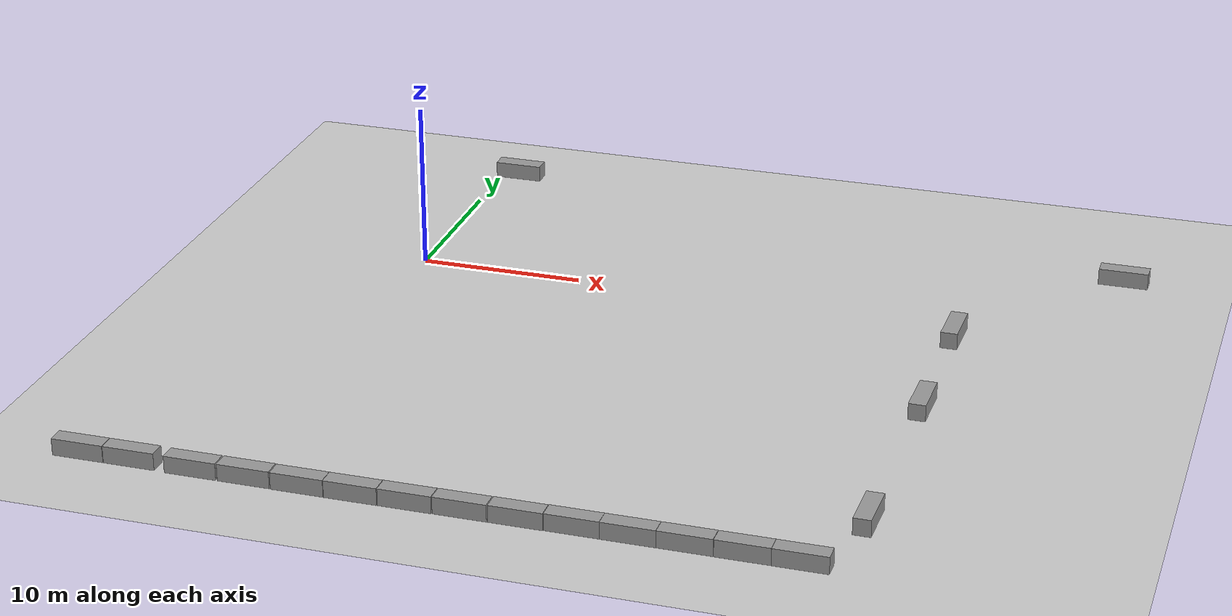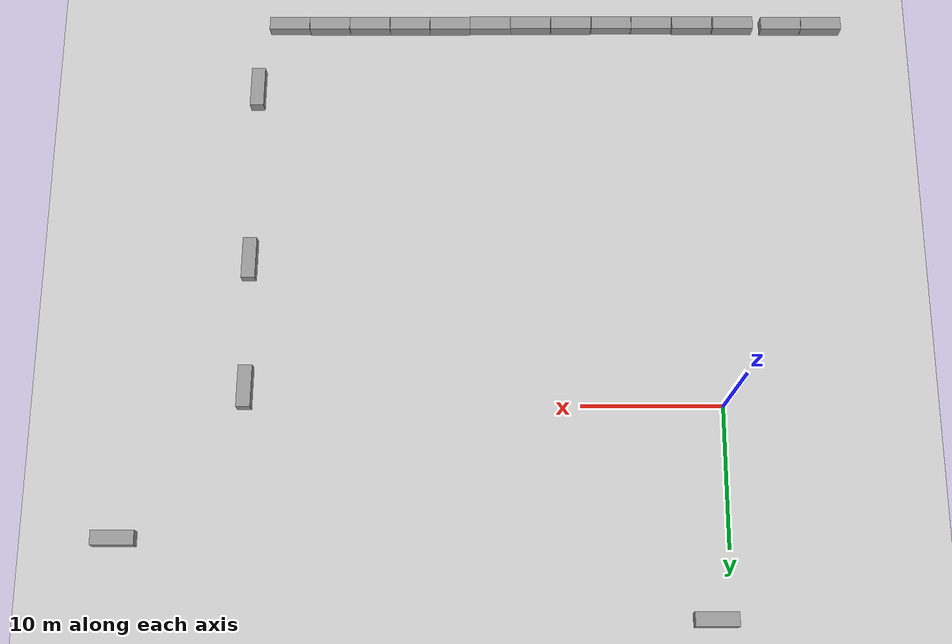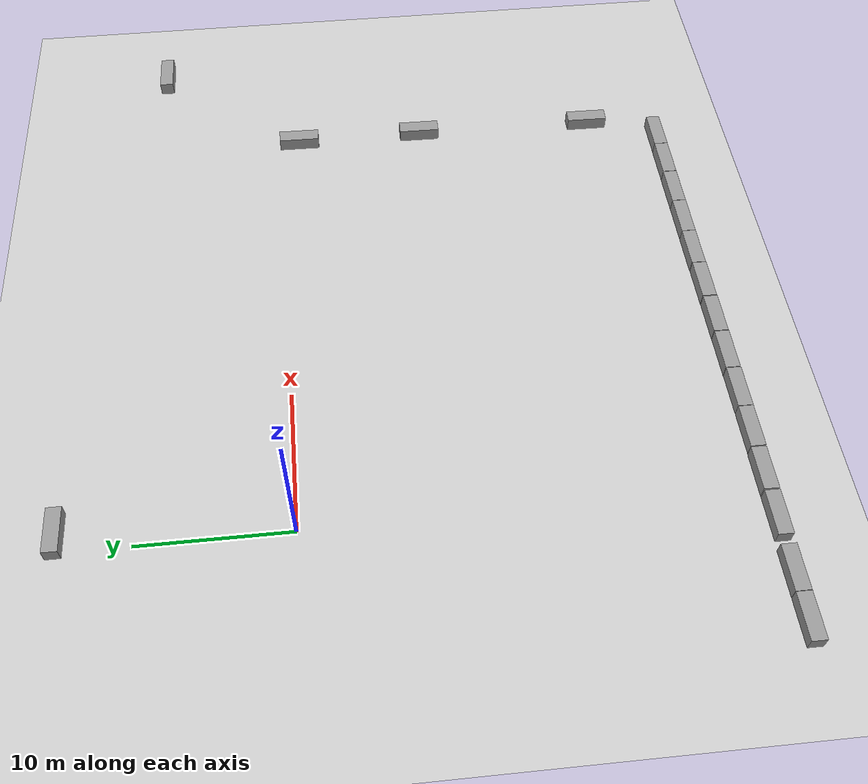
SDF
<sdf version="1.7">
 <world name="default">
  <light name="sun" type="directional">
   <pose>0 0 10 0 -0 0</pose>
   <diffuse>0.8 0.8 0.8 1</diffuse>
   <specular>0.2 0.2 0.2 1</specular>
   <attenuation>
    <range>1000</range>
    <constant>0.9</constant>
    <linear>0.01</linear>
    <quadratic>0.001</quadratic>
   </attenuation>
   <direction>-0.5 0.1 -0.9</direction>
   <spot><inner_angle>0</inner_angle><outer_angle>0</outer_angle><falloff>0</falloff></spot>
  </light>
  <model name="ground_plane">
   <static>1</static>
   <link name="link">
    <collision name="collision">
     <geometry><plane><normal>0 0 1</normal><size>100 100</size></plane></geometry>
     <surface><friction><ode><mu>100</mu><mu2>50</mu2></ode></friction></surface>
    </collision>
    <visual name="visual">
     <cast_shadows>0</cast_shadows>
     <geometry><plane><normal>0 0 1</normal><size>100 100</size></plane></geometry>
     <material>
      <script><uri>file://media/materials/scripts/gazebo.material</uri><name>Gazebo/Grey</name></script>
     </material>
    </visual>
   </link>
  </model>
  <gravity>0 0 -9.8</gravity>
  <magnetic_field>6e-06 2.3e-05 -4.2e-05</magnetic_field>
  <atmosphere type="adiabatic"/>
  <physics type="ode">
   <max_step_size>0.001</max_step_size>
   <real_time_factor>1</real_time_factor>
   <real_time_update_rate>1000</real_time_update_rate>
  </physics>
  <scene><ambient>0.4 0.4 0.4 1</ambient><background>0.7 0.7 0.7 1</background><shadows>1</shadows></scene>
  <audio><device>default</device></audio>
  <spherical_coordinates>
   <surface_model>EARTH_WGS84</surface_model>
   <latitude_deg>0</latitude_deg>
   <longitude_deg>0</longitude_deg>
   <elevation>0</elevation>
   <heading_deg>0</heading_deg>
  </spherical_coordinates>
  <model name="willow_garage_closed">
   <link name="link_0">
    <inertial>
     <mass>3</mass>
     <inertia><ixx>0.5</ixx><ixy>0</ixy><ixz>0</ixz><iyy>0.5</iyy><iyz>0</iyz><izz>0.5</izz></inertia>
    </inertial>
    <pose>-18.1731 -7.11068 0 0 -0 0</pose>
    <visual name="visual">
     <geometry><box><size>3 1 1</size></box></geometry>
     <material>
      <lighting>1</lighting>
      <script><uri>file://media/materials/scripts/gazebo.material</uri><name>Gazebo/Grey</name></script>
      <shader type="pixel"><normal_map>__default__</normal_map></shader>
      <ambient>0.3 0.3 0.3 1</ambient>
      <diffuse>0.7 0.7 0.7 1</diffuse>
      <specular>0.01 0.01 0.01 1</specular>
      <emissive>0 0 0 1</emissive>
     </material>
    </visual>
    <collision name="collision">
     <geometry><box><size>3 1 1</size></box></geometry>
     <surface>
      <friction>
       <ode><mu>1</mu><mu2>1</mu2><fdir1>0 0 0</fdir1><slip1>0</slip1><slip2>0</slip2></ode>
       <torsional>
        <coefficient>1</coefficient>
        <patch_radius>0</patch_radius>
        <surface_radius>0</surface_radius>
        <use_patch_radius>1</use_patch_radius>
        <ode><slip>0</slip></ode>
       </torsional>
      </friction>
      <bounce><restitution_coefficient>0</restitution_coefficient><threshold>1e+06</threshold></bounce>
      <contact>
       <collide_without_contact>0</collide_without_contact>
       <collide_without_contact_bitmask>1</collide_without_contact_bitmask>
       <collide_bitmask>1</collide_bitmask>
       <ode>
        <soft_cfm>0</soft_cfm>
        <soft_erp>0.2</soft_erp>
        <kp>1e+13</kp>
        <kd>1</kd>
        <max_vel>0.01</max_vel>
        <min_depth>0</min_depth>
       </ode>
       <bullet>
        <split_impulse>1</split_impulse>
        <split_impulse_penetration_threshold>-0.01</split_impulse_penetration_threshold>
        <soft_cfm>0</soft_cfm>
        <soft_erp>0.2</soft_erp>
        <kp>1e+13</kp>
        <kd>1</kd>
       </bullet>
      </contact>
     </surface>
    </collision>
   </link>
   <link name="link_0_clone_0">
    <inertial>
     <mass>3</mass>
     <inertia><ixx>0.5</ixx><ixy>0</ixy><ixz>0</ixz><iyy>0.5</iyy><iyz>0</iyz><izz>0.5</izz></inertia>
    </inertial>
    <pose>-12.0183 -7.13495 0 0 -0 0</pose>
    <visual name="visual">
     <geometry><box><size>3 1 1</size></box></geometry>
     <material>
      <lighting>1</lighting>
      <script><uri>file://media/materials/scripts/gazebo.material</uri><name>Gazebo/Grey</name></script>
      <shader type="pixel"><normal_map>__default__</normal_map></shader>
      <ambient>0.3 0.3 0.3 1</ambient>
      <diffuse>0.7 0.7 0.7 1</diffuse>
      <specular>0.01 0.01 0.01 1</specular>
      <emissive>0 0 0 1</emissive>
     </material>
    </visual>
    <collision name="collision">
     <geometry><box><size>3 1 1</size></box></geometry>
     <surface>
      <friction>
       <ode><mu>1</mu><mu2>1</mu2><fdir1>0 0 0</fdir1><slip1>0</slip1><slip2>0</slip2></ode>
       <torsional>
        <coefficient>1</coefficient>
        <patch_radius>0</patch_radius>
        <surface_radius>0</surface_radius>
        <use_patch_radius>1</use_patch_radius>
        <ode><slip>0</slip></ode>
       </torsional>
      </friction>
      <bounce><restitution_coefficient>0</restitution_coefficient><threshold>1e+06</threshold></bounce>
      <contact>
       <collide_without_contact>0</collide_without_contact>
       <collide_without_contact_bitmask>1</collide_without_contact_bitmask>
       <collide_bitmask>1</collide_bitmask>
       <ode>
        <soft_cfm>0</soft_cfm>
        <soft_erp>0.2</soft_erp>
        <kp>1e+13</kp>
        <kd>1</kd>
        <max_vel>0.01</max_vel>
        <min_depth>0</min_depth>
       </ode>
       <bullet>
        <split_impulse>1</split_impulse>
        <split_impulse_penetration_threshold>-0.01</split_impulse_penetration_threshold>
        <soft_cfm>0</soft_cfm>
        <soft_erp>0.2</soft_erp>
        <kp>1e+13</kp>
        <kd>1</kd>
       </bullet>
      </contact>
     </surface>
    </collision>
   </link>
   <link name="link_0_clone_1">
    <inertial>
     <mass>3</mass>
     <inertia><ixx>0.5</ixx><ixy>0</ixy><ixz>0</ixz><iyy>0.5</iyy><iyz>0</iyz><izz>0.5</izz></inertia>
    </inertial>
    <pose>-8.9893 -7.13725 0 0 -0 0</pose>
    <visual name="visual">
     <geometry><box><size>3 1 1</size></box></geometry>
     <material>
      <lighting>1</lighting>
      <script><uri>file://media/materials/scripts/gazebo.material</uri><name>Gazebo/Grey</name></script>
      <shader type="pixel"><normal_map>__default__</normal_map></shader>
      <ambient>0.3 0.3 0.3 1</ambient>
      <diffuse>0.7 0.7 0.7 1</diffuse>
      <specular>0.01 0.01 0.01 1</specular>
      <emissive>0 0 0 1</emissive>
     </material>
    </visual>
    <collision name="collision">
     <geometry><box><size>3 1 1</size></box></geometry>
     <surface>
      <friction>
       <ode><mu>1</mu><mu2>1</mu2><fdir1>0 0 0</fdir1><slip1>0</slip1><slip2>0</slip2></ode>
       <torsional>
        <coefficient>1</coefficient>
        <patch_radius>0</patch_radius>
        <surface_radius>0</surface_radius>
        <use_patch_radius>1</use_patch_radius>
        <ode><slip>0</slip></ode>
       </torsional>
      </friction>
      <bounce><restitution_coefficient>0</restitution_coefficient><threshold>1e+06</threshold></bounce>
      <contact>
       <collide_without_contact>0</collide_without_contact>
       <collide_without_contact_bitmask>1</collide_without_contact_bitmask>
       <collide_bitmask>1</collide_bitmask>
       <ode>
        <soft_cfm>0</soft_cfm>
        <soft_erp>0.2</soft_erp>
        <kp>1e+13</kp>
        <kd>1</kd>
        <max_vel>0.01</max_vel>
        <min_depth>0</min_depth>
       </ode>
       <bullet>
        <split_impulse>1</split_impulse>
        <split_impulse_penetration_threshold>-0.01</split_impulse_penetration_threshold>
        <soft_cfm>0</soft_cfm>
        <soft_erp>0.2</soft_erp>
        <kp>1e+13</kp>
        <kd>1</kd>
       </bullet>
      </contact>
     </surface>
    </collision>
   </link>
   <link name="link_0_clone_1_clone">
    <inertial>
     <mass>3</mass>
     <inertia><ixx>0.5</ixx><ixy>0</ixy><ixz>0</ixz><iyy>0.5</iyy><iyz>0</iyz><izz>0.5</izz></inertia>
    </inertial>
    <pose>-5.94987 -7.12324 0 0 -0 0</pose>
    <visual name="visual">
     <geometry><box><size>3 1 1</size></box></geometry>
     <material>
      <lighting>1</lighting>
      <script><uri>file://media/materials/scripts/gazebo.material</uri><name>Gazebo/Grey</name></script>
      <shader type="pixel"><normal_map>__default__</normal_map></shader>
      <ambient>0.3 0.3 0.3 1</ambient>
      <diffuse>0.7 0.7 0.7 1</diffuse>
      <specular>0.01 0.01 0.01 1</specular>
      <emissive>0 0 0 1</emissive>
     </material>
    </visual>
    <collision name="collision">
     <geometry><box><size>3 1 1</size></box></geometry>
     <surface>
      <friction>
       <ode><mu>1</mu><mu2>1</mu2><fdir1>0 0 0</fdir1><slip1>0</slip1><slip2>0</slip2></ode>
       <torsional>
        <coefficient>1</coefficient>
        <patch_radius>0</patch_radius>
        <surface_radius>0</surface_radius>
        <use_patch_radius>1</use_patch_radius>
        <ode><slip>0</slip></ode>
       </torsional>
      </friction>
      <bounce><restitution_coefficient>0</restitution_coefficient><threshold>1e+06</threshold></bounce>
      <contact>
       <collide_without_contact>0</collide_without_contact>
       <collide_without_contact_bitmask>1</collide_without_contact_bitmask>
       <collide_bitmask>1</collide_bitmask>
       <ode>
        <soft_cfm>0</soft_cfm>
        <soft_erp>0.2</soft_erp>
        <kp>1e+13</kp>
        <kd>1</kd>
        <max_vel>0.01</max_vel>
        <min_depth>0</min_depth>
       </ode>
       <bullet>
        <split_impulse>1</split_impulse>
        <split_impulse_penetration_threshold>-0.01</split_impulse_penetration_threshold>
        <soft_cfm>0</soft_cfm>
        <soft_erp>0.2</soft_erp>
        <kp>1e+13</kp>
        <kd>1</kd>
       </bullet>
      </contact>
     </surface>
    </collision>
   </link>
   <link name="link_0_clone_1_clone_0">
    <inertial>
     <mass>3</mass>
     <inertia><ixx>0.5</ixx><ixy>0</ixy><ixz>0</ixz><iyy>0.5</iyy><iyz>0</iyz><izz>0.5</izz></inertia>
    </inertial>
    <pose>-15.0884 -7.11052 0 0 -0 0</pose>
    <visual name="visual">
     <geometry><box><size>3 1 1</size></box></geometry>
     <material>
      <lighting>1</lighting>
      <script><uri>file://media/materials/scripts/gazebo.material</uri><name>Gazebo/Grey</name></script>
      <shader type="pixel"><normal_map>__default__</normal_map></shader>
      <ambient>0.3 0.3 0.3 1</ambient>
      <diffuse>0.7 0.7 0.7 1</diffuse>
      <specular>0.01 0.01 0.01 1</specular>
      <emissive>0 0 0 1</emissive>
     </material>
    </visual>
    <collision name="collision">
     <geometry><box><size>3 1 1</size></box></geometry>
     <surface>
      <friction>
       <ode><mu>1</mu><mu2>1</mu2><fdir1>0 0 0</fdir1><slip1>0</slip1><slip2>0</slip2></ode>
       <torsional>
        <coefficient>1</coefficient>
        <patch_radius>0</patch_radius>
        <surface_radius>0</surface_radius>
        <use_patch_radius>1</use_patch_radius>
        <ode><slip>0</slip></ode>
       </torsional>
      </friction>
      <bounce><restitution_coefficient>0</restitution_coefficient><threshold>1e+06</threshold></bounce>
      <contact>
       <collide_without_contact>0</collide_without_contact>
       <collide_without_contact_bitmask>1</collide_without_contact_bitmask>
       <collide_bitmask>1</collide_bitmask>
       <ode>
        <soft_cfm>0</soft_cfm>
        <soft_erp>0.2</soft_erp>
        <kp>1e+13</kp>
        <kd>1</kd>
        <max_vel>0.01</max_vel>
        <min_depth>0</min_depth>
       </ode>
       <bullet>
        <split_impulse>1</split_impulse>
        <split_impulse_penetration_threshold>-0.01</split_impulse_penetration_threshold>
        <soft_cfm>0</soft_cfm>
        <soft_erp>0.2</soft_erp>
        <kp>1e+13</kp>
        <kd>1</kd>
       </bullet>
      </contact>
     </surface>
    </collision>
   </link>
   <link name="link_0_clone_1_clone_1">
    <inertial>
     <mass>3</mass>
     <inertia><ixx>0.5</ixx><ixy>0</ixy><ixz>0</ixz><iyy>0.5</iyy><iyz>0</iyz><izz>0.5</izz></inertia>
    </inertial>
    <pose>-2.90632 -7.10976 0 0 -0 0</pose>
    <visual name="visual">
     <geometry><box><size>3 1 1</size></box></geometry>
     <material>
      <lighting>1</lighting>
      <script><uri>file://media/materials/scripts/gazebo.material</uri><name>Gazebo/Grey</name></script>
      <shader type="pixel"><normal_map>__default__</normal_map></shader>
      <ambient>0.3 0.3 0.3 1</ambient>
      <diffuse>0.7 0.7 0.7 1</diffuse>
      <specular>0.01 0.01 0.01 1</specular>
      <emissive>0 0 0 1</emissive>
     </material>
    </visual>
    <collision name="collision">
     <geometry><box><size>3 1 1</size></box></geometry>
     <surface>
      <friction>
       <ode><mu>1</mu><mu2>1</mu2><fdir1>0 0 0</fdir1><slip1>0</slip1><slip2>0</slip2></ode>
       <torsional>
        <coefficient>1</coefficient>
        <patch_radius>0</patch_radius>
        <surface_radius>0</surface_radius>
        <use_patch_radius>1</use_patch_radius>
        <ode><slip>0</slip></ode>
       </torsional>
      </friction>
      <bounce><restitution_coefficient>0</restitution_coefficient><threshold>1e+06</threshold></bounce>
      <contact>
       <collide_without_contact>0</collide_without_contact>
       <collide_without_contact_bitmask>1</collide_without_contact_bitmask>
       <collide_bitmask>1</collide_bitmask>
       <ode>
        <soft_cfm>0</soft_cfm>
        <soft_erp>0.2</soft_erp>
        <kp>1e+13</kp>
        <kd>1</kd>
        <max_vel>0.01</max_vel>
        <min_depth>0</min_depth>
       </ode>
       <bullet>
        <split_impulse>1</split_impulse>
        <split_impulse_penetration_threshold>-0.01</split_impulse_penetration_threshold>
        <soft_cfm>0</soft_cfm>
        <soft_erp>0.2</soft_erp>
        <kp>1e+13</kp>
        <kd>1</kd>
       </bullet>
      </contact>
     </surface>
    </collision>
   </link>
   <link name="link_0_clone_1_clone_2">
    <inertial>
     <mass>3</mass>
     <inertia><ixx>0.5</ixx><ixy>0</ixy><ixz>0</ixz><iyy>0.5</iyy><iyz>0</iyz><izz>0.5</izz></inertia>
    </inertial>
    <pose>0.157147 -7.09584 0 0 -0 0</pose>
    <visual name="visual">
     <geometry><box><size>3 1 1</size></box></geometry>
     <material>
      <lighting>1</lighting>
      <script><uri>file://media/materials/scripts/gazebo.material</uri><name>Gazebo/Grey</name></script>
      <shader type="pixel"><normal_map>__default__</normal_map></shader>
      <ambient>0.3 0.3 0.3 1</ambient>
      <diffuse>0.7 0.7 0.7 1</diffuse>
      <specular>0.01 0.01 0.01 1</specular>
      <emissive>0 0 0 1</emissive>
     </material>
    </visual>
    <collision name="collision">
     <geometry><box><size>3 1 1</size></box></geometry>
     <surface>
      <friction>
       <ode><mu>1</mu><mu2>1</mu2><fdir1>0 0 0</fdir1><slip1>0</slip1><slip2>0</slip2></ode>
       <torsional>
        <coefficient>1</coefficient>
        <patch_radius>0</patch_radius>
        <surface_radius>0</surface_radius>
        <use_patch_radius>1</use_patch_radius>
        <ode><slip>0</slip></ode>
       </torsional>
      </friction>
      <bounce><restitution_coefficient>0</restitution_coefficient><threshold>1e+06</threshold></bounce>
      <contact>
       <collide_without_contact>0</collide_without_contact>
       <collide_without_contact_bitmask>1</collide_without_contact_bitmask>
       <collide_bitmask>1</collide_bitmask>
       <ode>
        <soft_cfm>0</soft_cfm>
        <soft_erp>0.2</soft_erp>
        <kp>1e+13</kp>
        <kd>1</kd>
        <max_vel>0.01</max_vel>
        <min_depth>0</min_depth>
       </ode>
       <bullet>
        <split_impulse>1</split_impulse>
        <split_impulse_penetration_threshold>-0.01</split_impulse_penetration_threshold>
        <soft_cfm>0</soft_cfm>
        <soft_erp>0.2</soft_erp>
        <kp>1e+13</kp>
        <kd>1</kd>
       </bullet>
      </contact>
     </surface>
    </collision>
   </link>
   <link name="link_0_clone_1_clone_2_clone">
    <inertial>
     <mass>3</mass>
     <inertia><ixx>0.5</ixx><ixy>0</ixy><ixz>0</ixz><iyy>0.5</iyy><iyz>0</iyz><izz>0.5</izz></inertia>
    </inertial>
    <pose>3.19134 -7.07336 0 0 -0 0</pose>
    <visual name="visual">
     <geometry><box><size>3 1 1</size></box></geometry>
     <material>
      <lighting>1</lighting>
      <script><uri>file://media/materials/scripts/gazebo.material</uri><name>Gazebo/Grey</name></script>
      <shader type="pixel"><normal_map>__default__</normal_map></shader>
      <ambient>0.3 0.3 0.3 1</ambient>
      <diffuse>0.7 0.7 0.7 1</diffuse>
      <specular>0.01 0.01 0.01 1</specular>
      <emissive>0 0 0 1</emissive>
     </material>
    </visual>
    <collision name="collision">
     <geometry><box><size>3 1 1</size></box></geometry>
     <surface>
      <friction>
       <ode><mu>1</mu><mu2>1</mu2><fdir1>0 0 0</fdir1><slip1>0</slip1><slip2>0</slip2></ode>
       <torsional>
        <coefficient>1</coefficient>
        <patch_radius>0</patch_radius>
        <surface_radius>0</surface_radius>
        <use_patch_radius>1</use_patch_radius>
        <ode><slip>0</slip></ode>
       </torsional>
      </friction>
      <bounce><restitution_coefficient>0</restitution_coefficient><threshold>1e+06</threshold></bounce>
      <contact>
       <collide_without_contact>0</collide_without_contact>
       <collide_without_contact_bitmask>1</collide_without_contact_bitmask>
       <collide_bitmask>1</collide_bitmask>
       <ode>
        <soft_cfm>0</soft_cfm>
        <soft_erp>0.2</soft_erp>
        <kp>1e+13</kp>
        <kd>1</kd>
        <max_vel>0.01</max_vel>
        <min_depth>0</min_depth>
       </ode>
       <bullet>
        <split_impulse>1</split_impulse>
        <split_impulse_penetration_threshold>-0.01</split_impulse_penetration_threshold>
        <soft_cfm>0</soft_cfm>
        <soft_erp>0.2</soft_erp>
        <kp>1e+13</kp>
        <kd>1</kd>
       </bullet>
      </contact>
     </surface>
    </collision>
   </link>
   <link name="link_0_clone_1_clone_2_clone_0">
    <inertial>
     <mass>3</mass>
     <inertia><ixx>0.5</ixx><ixy>0</ixy><ixz>0</ixz><iyy>0.5</iyy><iyz>0</iyz><izz>0.5</izz></inertia>
    </inertial>
    <pose>6.20885 -7.07647 0 0 -0 0</pose>
    <visual name="visual">
     <geometry><box><size>3 1 1</size></box></geometry>
     <material>
      <lighting>1</lighting>
      <script><uri>file://media/materials/scripts/gazebo.material</uri><name>Gazebo/Grey</name></script>
      <shader type="pixel"><normal_map>__default__</normal_map></shader>
      <ambient>0.3 0.3 0.3 1</ambient>
      <diffuse>0.7 0.7 0.7 1</diffuse>
      <specular>0.01 0.01 0.01 1</specular>
      <emissive>0 0 0 1</emissive>
     </material>
    </visual>
    <collision name="collision">
     <geometry><box><size>3 1 1</size></box></geometry>
     <surface>
      <friction>
       <ode><mu>1</mu><mu2>1</mu2><fdir1>0 0 0</fdir1><slip1>0</slip1><slip2>0</slip2></ode>
       <torsional>
        <coefficient>1</coefficient>
        <patch_radius>0</patch_radius>
        <surface_radius>0</surface_radius>
        <use_patch_radius>1</use_patch_radius>
        <ode><slip>0</slip></ode>
       </torsional>
      </friction>
      <bounce><restitution_coefficient>0</restitution_coefficient><threshold>1e+06</threshold></bounce>
      <contact>
       <collide_without_contact>0</collide_without_contact>
       <collide_without_contact_bitmask>1</collide_without_contact_bitmask>
       <collide_bitmask>1</collide_bitmask>
       <ode>
        <soft_cfm>0</soft_cfm>
        <soft_erp>0.2</soft_erp>
        <kp>1e+13</kp>
        <kd>1</kd>
        <max_vel>0.01</max_vel>
        <min_depth>0</min_depth>
       </ode>
       <bullet>
        <split_impulse>1</split_impulse>
        <split_impulse_penetration_threshold>-0.01</split_impulse_penetration_threshold>
        <soft_cfm>0</soft_cfm>
        <soft_erp>0.2</soft_erp>
        <kp>1e+13</kp>
        <kd>1</kd>
       </bullet>
      </contact>
     </surface>
    </collision>
   </link>
   <link name="link_0_clone_1_clone_2_clone_1">
    <inertial>
     <mass>3</mass>
     <inertia><ixx>0.5</ixx><ixy>0</ixy><ixz>0</ixz><iyy>0.5</iyy><iyz>0</iyz><izz>0.5</izz></inertia>
    </inertial>
    <pose>9.23357 -7.07588 0 0 -0 0</pose>
    <visual name="visual">
     <geometry><box><size>3 1 1</size></box></geometry>
     <material>
      <lighting>1</lighting>
      <script><uri>file://media/materials/scripts/gazebo.material</uri><name>Gazebo/Grey</name></script>
      <shader type="pixel"><normal_map>__default__</normal_map></shader>
      <ambient>0.3 0.3 0.3 1</ambient>
      <diffuse>0.7 0.7 0.7 1</diffuse>
      <specular>0.01 0.01 0.01 1</specular>
      <emissive>0 0 0 1</emissive>
     </material>
    </visual>
    <collision name="collision">
     <geometry><box><size>3 1 1</size></box></geometry>
     <surface>
      <friction>
       <ode><mu>1</mu><mu2>1</mu2><fdir1>0 0 0</fdir1><slip1>0</slip1><slip2>0</slip2></ode>
       <torsional>
        <coefficient>1</coefficient>
        <patch_radius>0</patch_radius>
        <surface_radius>0</surface_radius>
        <use_patch_radius>1</use_patch_radius>
        <ode><slip>0</slip></ode>
       </torsional>
      </friction>
      <bounce><restitution_coefficient>0</restitution_coefficient><threshold>1e+06</threshold></bounce>
      <contact>
       <collide_without_contact>0</collide_without_contact>
       <collide_without_contact_bitmask>1</collide_without_contact_bitmask>
       <collide_bitmask>1</collide_bitmask>
       <ode>
        <soft_cfm>0</soft_cfm>
        <soft_erp>0.2</soft_erp>
        <kp>1e+13</kp>
        <kd>1</kd>
        <max_vel>0.01</max_vel>
        <min_depth>0</min_depth>
       </ode>
       <bullet>
        <split_impulse>1</split_impulse>
        <split_impulse_penetration_threshold>-0.01</split_impulse_penetration_threshold>
        <soft_cfm>0</soft_cfm>
        <soft_erp>0.2</soft_erp>
        <kp>1e+13</kp>
        <kd>1</kd>
       </bullet>
      </contact>
     </surface>
    </collision>
   </link>
   <link name="link_0_clone_1_clone_2_clone_2">
    <inertial>
     <mass>3</mass>
     <inertia><ixx>0.5</ixx><ixy>0</ixy><ixz>0</ixz><iyy>0.5</iyy><iyz>0</iyz><izz>0.5</izz></inertia>
    </inertial>
    <pose>12.2656 -7.08304 0 0 -0 0</pose>
    <visual name="visual">
     <geometry><box><size>3 1 1</size></box></geometry>
     <material>
      <lighting>1</lighting>
      <script><uri>file://media/materials/scripts/gazebo.material</uri><name>Gazebo/Grey</name></script>
      <shader type="pixel"><normal_map>__default__</normal_map></shader>
      <ambient>0.3 0.3 0.3 1</ambient>
      <diffuse>0.7 0.7 0.7 1</diffuse>
      <specular>0.01 0.01 0.01 1</specular>
      <emissive>0 0 0 1</emissive>
     </material>
    </visual>
    <collision name="collision">
     <geometry><box><size>3 1 1</size></box></geometry>
     <surface>
      <friction>
       <ode><mu>1</mu><mu2>1</mu2><fdir1>0 0 0</fdir1><slip1>0</slip1><slip2>0</slip2></ode>
       <torsional>
        <coefficient>1</coefficient>
        <patch_radius>0</patch_radius>
        <surface_radius>0</surface_radius>
        <use_patch_radius>1</use_patch_radius>
        <ode><slip>0</slip></ode>
       </torsional>
      </friction>
      <bounce><restitution_coefficient>0</restitution_coefficient><threshold>1e+06</threshold></bounce>
      <contact>
       <collide_without_contact>0</collide_without_contact>
       <collide_without_contact_bitmask>1</collide_without_contact_bitmask>
       <collide_bitmask>1</collide_bitmask>
       <ode>
        <soft_cfm>0</soft_cfm>
        <soft_erp>0.2</soft_erp>
        <kp>1e+13</kp>
        <kd>1</kd>
        <max_vel>0.01</max_vel>
        <min_depth>0</min_depth>
       </ode>
       <bullet>
        <split_impulse>1</split_impulse>
        <split_impulse_penetration_threshold>-0.01</split_impulse_penetration_threshold>
        <soft_cfm>0</soft_cfm>
        <soft_erp>0.2</soft_erp>
        <kp>1e+13</kp>
        <kd>1</kd>
       </bullet>
      </contact>
     </surface>
    </collision>
   </link>
   <link name="link_0_clone_1_clone_2_clone_3">
    <inertial>
     <mass>3</mass>
     <inertia><ixx>0.5</ixx><ixy>0</ixy><ixz>0</ixz><iyy>0.5</iyy><iyz>0</iyz><izz>0.5</izz></inertia>
    </inertial>
    <pose>15.2837 -7.09055 0 0 -0 0</pose>
    <visual name="visual">
     <geometry><box><size>3 1 1</size></box></geometry>
     <material>
      <lighting>1</lighting>
      <script><uri>file://media/materials/scripts/gazebo.material</uri><name>Gazebo/Grey</name></script>
      <shader type="pixel"><normal_map>__default__</normal_map></shader>
      <ambient>0.3 0.3 0.3 1</ambient>
      <diffuse>0.7 0.7 0.7 1</diffuse>
      <specular>0.01 0.01 0.01 1</specular>
      <emissive>0 0 0 1</emissive>
     </material>
    </visual>
    <collision name="collision">
     <geometry><box><size>3 1 1</size></box></geometry>
     <surface>
      <friction>
       <ode><mu>1</mu><mu2>1</mu2><fdir1>0 0 0</fdir1><slip1>0</slip1><slip2>0</slip2></ode>
       <torsional>
        <coefficient>1</coefficient>
        <patch_radius>0</patch_radius>
        <surface_radius>0</surface_radius>
        <use_patch_radius>1</use_patch_radius>
        <ode><slip>0</slip></ode>
       </torsional>
      </friction>
      <bounce><restitution_coefficient>0</restitution_coefficient><threshold>1e+06</threshold></bounce>
      <contact>
       <collide_without_contact>0</collide_without_contact>
       <collide_without_contact_bitmask>1</collide_without_contact_bitmask>
       <collide_bitmask>1</collide_bitmask>
       <ode>
        <soft_cfm>0</soft_cfm>
        <soft_erp>0.2</soft_erp>
        <kp>1e+13</kp>
        <kd>1</kd>
        <max_vel>0.01</max_vel>
        <min_depth>0</min_depth>
       </ode>
       <bullet>
        <split_impulse>1</split_impulse>
        <split_impulse_penetration_threshold>-0.01</split_impulse_penetration_threshold>
        <soft_cfm>0</soft_cfm>
        <soft_erp>0.2</soft_erp>
        <kp>1e+13</kp>
        <kd>1</kd>
       </bullet>
      </contact>
     </surface>
    </collision>
   </link>
   <link name="link_0_clone_1_clone_2_clone_4">
    <inertial>
     <mass>3</mass>
     <inertia><ixx>0.5</ixx><ixy>0</ixy><ixz>0</ixz><iyy>0.5</iyy><iyz>0</iyz><izz>0.5</izz></inertia>
    </inertial>
    <pose>-21.7947 -7.05737 0 0 -0 0</pose>
    <visual name="visual">
     <geometry><box><size>3 1 1</size></box></geometry>
     <material>
      <lighting>1</lighting>
      <script><uri>file://media/materials/scripts/gazebo.material</uri><name>Gazebo/Grey</name></script>
      <shader type="pixel"><normal_map>__default__</normal_map></shader>
      <ambient>0.3 0.3 0.3 1</ambient>
      <diffuse>0.7 0.7 0.7 1</diffuse>
      <specular>0.01 0.01 0.01 1</specular>
      <emissive>0 0 0 1</emissive>
     </material>
    </visual>
    <collision name="collision">
     <geometry><box><size>3 1 1</size></box></geometry>
     <surface>
      <friction>
       <ode><mu>1</mu><mu2>1</mu2><fdir1>0 0 0</fdir1><slip1>0</slip1><slip2>0</slip2></ode>
       <torsional>
        <coefficient>1</coefficient>
        <patch_radius>0</patch_radius>
        <surface_radius>0</surface_radius>
        <use_patch_radius>1</use_patch_radius>
        <ode><slip>0</slip></ode>
       </torsional>
      </friction>
      <bounce><restitution_coefficient>0</restitution_coefficient><threshold>1e+06</threshold></bounce>
      <contact>
       <collide_without_contact>0</collide_without_contact>
       <collide_without_contact_bitmask>1</collide_without_contact_bitmask>
       <collide_bitmask>1</collide_bitmask>
       <ode>
        <soft_cfm>0</soft_cfm>
        <soft_erp>0.2</soft_erp>
        <kp>1e+13</kp>
        <kd>1</kd>
        <max_vel>0.01</max_vel>
        <min_depth>0</min_depth>
       </ode>
       <bullet>
        <split_impulse>1</split_impulse>
        <split_impulse_penetration_threshold>-0.01</split_impulse_penetration_threshold>
        <soft_cfm>0</soft_cfm>
        <soft_erp>0.2</soft_erp>
        <kp>1e+13</kp>
        <kd>1</kd>
       </bullet>
      </contact>
     </surface>
    </collision>
   </link>
   <link name="link_0_clone_1_clone_2_clone_5">
    <inertial>
     <mass>3</mass>
     <inertia><ixx>0.5</ixx><ixy>0</ixy><ixz>0</ixz><iyy>0.5</iyy><iyz>0</iyz><izz>0.5</izz></inertia>
    </inertial>
    <pose>-24.8227 -7.05873 0 0 -0 0</pose>
    <visual name="visual">
     <geometry><box><size>3 1 1</size></box></geometry>
     <material>
      <lighting>1</lighting>
      <script><uri>file://media/materials/scripts/gazebo.material</uri><name>Gazebo/Grey</name></script>
      <shader type="pixel"><normal_map>__default__</normal_map></shader>
      <ambient>0.3 0.3 0.3 1</ambient>
      <diffuse>0.7 0.7 0.7 1</diffuse>
      <specular>0.01 0.01 0.01 1</specular>
      <emissive>0 0 0 1</emissive>
     </material>
    </visual>
    <collision name="collision">
     <geometry><box><size>3 1 1</size></box></geometry>
     <surface>
      <friction>
       <ode><mu>1</mu><mu2>1</mu2><fdir1>0 0 0</fdir1><slip1>0</slip1><slip2>0</slip2></ode>
       <torsional>
        <coefficient>1</coefficient>
        <patch_radius>0</patch_radius>
        <surface_radius>0</surface_radius>
        <use_patch_radius>1</use_patch_radius>
        <ode><slip>0</slip></ode>
       </torsional>
      </friction>
      <bounce><restitution_coefficient>0</restitution_coefficient><threshold>1e+06</threshold></bounce>
      <contact>
       <collide_without_contact>0</collide_without_contact>
       <collide_without_contact_bitmask>1</collide_without_contact_bitmask>
       <collide_bitmask>1</collide_bitmask>
       <ode>
        <soft_cfm>0</soft_cfm>
        <soft_erp>0.2</soft_erp>
        <kp>1e+13</kp>
        <kd>1</kd>
        <max_vel>0.01</max_vel>
        <min_depth>0</min_depth>
       </ode>
       <bullet>
        <split_impulse>1</split_impulse>
        <split_impulse_penetration_threshold>-0.01</split_impulse_penetration_threshold>
        <soft_cfm>0</soft_cfm>
        <soft_erp>0.2</soft_erp>
        <kp>1e+13</kp>
        <kd>1</kd>
       </bullet>
      </contact>
     </surface>
    </collision>
   </link>
   <link name="link_0_clone_1_clone_2_clone_6">
    <inertial>
     <mass>3</mass>
     <inertia><ixx>0.5</ixx><ixy>0</ixy><ixz>0</ixz><iyy>0.5</iyy><iyz>0</iyz><izz>0.5</izz></inertia>
    </inertial>
    <pose>-14.9964 37.0465 0 0 -0 0</pose>
    <visual name="visual">
     <geometry><box><size>3 1 1</size></box></geometry>
     <material>
      <lighting>1</lighting>
      <script><uri>file://media/materials/scripts/gazebo.material</uri><name>Gazebo/Grey</name></script>
      <shader type="pixel"><normal_map>__default__</normal_map></shader>
      <ambient>0.3 0.3 0.3 1</ambient>
      <diffuse>0.7 0.7 0.7 1</diffuse>
      <specular>0.01 0.01 0.01 1</specular>
      <emissive>0 0 0 1</emissive>
     </material>
    </visual>
    <collision name="collision">
     <geometry><box><size>3 1 1</size></box></geometry>
     <surface>
      <friction>
       <ode><mu>1</mu><mu2>1</mu2><fdir1>0 0 0</fdir1><slip1>0</slip1><slip2>0</slip2></ode>
       <torsional>
        <coefficient>1</coefficient>
        <patch_radius>0</patch_radius>
        <surface_radius>0</surface_radius>
        <use_patch_radius>1</use_patch_radius>
        <ode><slip>0</slip></ode>
       </torsional>
      </friction>
      <bounce><restitution_coefficient>0</restitution_coefficient><threshold>1e+06</threshold></bounce>
      <contact>
       <collide_without_contact>0</collide_without_contact>
       <collide_without_contact_bitmask>1</collide_without_contact_bitmask>
       <collide_bitmask>1</collide_bitmask>
       <ode>
        <soft_cfm>0</soft_cfm>
        <soft_erp>0.2</soft_erp>
        <kp>1e+13</kp>
        <kd>1</kd>
        <max_vel>0.01</max_vel>
        <min_depth>0</min_depth>
       </ode>
       <bullet>
        <split_impulse>1</split_impulse>
        <split_impulse_penetration_threshold>-0.01</split_impulse_penetration_threshold>
        <soft_cfm>0</soft_cfm>
        <soft_erp>0.2</soft_erp>
        <kp>1e+13</kp>
        <kd>1</kd>
       </bullet>
      </contact>
     </surface>
    </collision>
   </link>
   <link name="link_0_clone_1_clone_2_clone_7">
    <inertial>
     <mass>3</mass>
     <inertia><ixx>0.5</ixx><ixy>0</ixy><ixz>0</ixz><iyy>0.5</iyy><iyz>0</iyz><izz>0.5</izz></inertia>
    </inertial>
    <pose>25.93 31.5876 0 0 -0 0</pose>
    <visual name="visual">
     <geometry><box><size>3 1 1</size></box></geometry>
     <material>
      <lighting>1</lighting>
      <script><uri>file://media/materials/scripts/gazebo.material</uri><name>Gazebo/Grey</name></script>
      <shader type="pixel"><normal_map>__default__</normal_map></shader>
      <ambient>0.3 0.3 0.3 1</ambient>
      <diffuse>0.7 0.7 0.7 1</diffuse>
      <specular>0.01 0.01 0.01 1</specular>
      <emissive>0 0 0 1</emissive>
     </material>
    </visual>
    <collision name="collision">
     <geometry><box><size>3 1 1</size></box></geometry>
     <surface>
      <friction>
       <ode><mu>1</mu><mu2>1</mu2><fdir1>0 0 0</fdir1><slip1>0</slip1><slip2>0</slip2></ode>
       <torsional>
        <coefficient>1</coefficient>
        <patch_radius>0</patch_radius>
        <surface_radius>0</surface_radius>
        <use_patch_radius>1</use_patch_radius>
        <ode><slip>0</slip></ode>
       </torsional>
      </friction>
      <bounce><restitution_coefficient>0</restitution_coefficient><threshold>1e+06</threshold></bounce>
      <contact>
       <collide_without_contact>0</collide_without_contact>
       <collide_without_contact_bitmask>1</collide_without_contact_bitmask>
       <collide_bitmask>1</collide_bitmask>
       <ode>
        <soft_cfm>0</soft_cfm>
        <soft_erp>0.2</soft_erp>
        <kp>1e+13</kp>
        <kd>1</kd>
        <max_vel>0.01</max_vel>
        <min_depth>0</min_depth>
       </ode>
       <bullet>
        <split_impulse>1</split_impulse>
        <split_impulse_penetration_threshold>-0.01</split_impulse_penetration_threshold>
        <soft_cfm>0</soft_cfm>
        <soft_erp>0.2</soft_erp>
        <kp>1e+13</kp>
        <kd>1</kd>
       </bullet>
      </contact>
     </surface>
    </collision>
   </link>
   <link name="link_0_clone_1_clone_2_clone_8">
    <inertial>
     <mass>3</mass>
     <inertia><ixx>0.5</ixx><ixy>0</ixy><ixz>0</ixz><iyy>0.5</iyy><iyz>0</iyz><izz>0.5</izz></inertia>
    </inertial>
    <pose>17.4498 21.0078 0 0 -0 1.55875</pose>
    <visual name="visual">
     <geometry><box><size>3 1 1</size></box></geometry>
     <material>
      <lighting>1</lighting>
      <script><uri>file://media/materials/scripts/gazebo.material</uri><name>Gazebo/Grey</name></script>
      <shader type="pixel"><normal_map>__default__</normal_map></shader>
      <ambient>0.3 0.3 0.3 1</ambient>
      <diffuse>0.7 0.7 0.7 1</diffuse>
      <specular>0.01 0.01 0.01 1</specular>
      <emissive>0 0 0 1</emissive>
     </material>
    </visual>
    <collision name="collision">
     <geometry><box><size>3 1 1</size></box></geometry>
     <surface>
      <friction>
       <ode><mu>1</mu><mu2>1</mu2><fdir1>0 0 0</fdir1><slip1>0</slip1><slip2>0</slip2></ode>
       <torsional>
        <coefficient>1</coefficient>
        <patch_radius>0</patch_radius>
        <surface_radius>0</surface_radius>
        <use_patch_radius>1</use_patch_radius>
        <ode><slip>0</slip></ode>
       </torsional>
      </friction>
      <bounce><restitution_coefficient>0</restitution_coefficient><threshold>1e+06</threshold></bounce>
      <contact>
       <collide_without_contact>0</collide_without_contact>
       <collide_without_contact_bitmask>1</collide_without_contact_bitmask>
       <collide_bitmask>1</collide_bitmask>
       <ode>
        <soft_cfm>0</soft_cfm>
        <soft_erp>0.2</soft_erp>
        <kp>1e+13</kp>
        <kd>1</kd>
        <max_vel>0.01</max_vel>
        <min_depth>0</min_depth>
       </ode>
       <bullet>
        <split_impulse>1</split_impulse>
        <split_impulse_penetration_threshold>-0.01</split_impulse_penetration_threshold>
        <soft_cfm>0</soft_cfm>
        <soft_erp>0.2</soft_erp>
        <kp>1e+13</kp>
        <kd>1</kd>
       </bullet>
      </contact>
     </surface>
    </collision>
   </link>
   <link name="link_0_clone_1_clone_2_clone_8_clone">
    <inertial>
     <mass>3</mass>
     <inertia><ixx>0.5</ixx><ixy>0</ixy><ixz>0</ixz><iyy>0.5</iyy><iyz>0</iyz><izz>0.5</izz></inertia>
    </inertial>
    <pose>17.5365 11.551 0 0 -0 1.55875</pose>
    <visual name="visual">
     <geometry><box><size>3 1 1</size></box></geometry>
     <material>
      <lighting>1</lighting>
      <script><uri>file://media/materials/scripts/gazebo.material</uri><name>Gazebo/Grey</name></script>
      <shader type="pixel"><normal_map>__default__</normal_map></shader>
      <ambient>0.3 0.3 0.3 1</ambient>
      <diffuse>0.7 0.7 0.7 1</diffuse>
      <specular>0.01 0.01 0.01 1</specular>
      <emissive>0 0 0 1</emissive>
     </material>
    </visual>
    <collision name="collision">
     <geometry><box><size>3 1 1</size></box></geometry>
     <surface>
      <friction>
       <ode><mu>1</mu><mu2>1</mu2><fdir1>0 0 0</fdir1><slip1>0</slip1><slip2>0</slip2></ode>
       <torsional>
        <coefficient>1</coefficient>
        <patch_radius>0</patch_radius>
        <surface_radius>0</surface_radius>
        <use_patch_radius>1</use_patch_radius>
        <ode><slip>0</slip></ode>
       </torsional>
      </friction>
      <bounce><restitution_coefficient>0</restitution_coefficient><threshold>1e+06</threshold></bounce>
      <contact>
       <collide_without_contact>0</collide_without_contact>
       <collide_without_contact_bitmask>1</collide_without_contact_bitmask>
       <collide_bitmask>1</collide_bitmask>
       <ode>
        <soft_cfm>0</soft_cfm>
        <soft_erp>0.2</soft_erp>
        <kp>1e+13</kp>
        <kd>1</kd>
        <max_vel>0.01</max_vel>
        <min_depth>0</min_depth>
       </ode>
       <bullet>
        <split_impulse>1</split_impulse>
        <split_impulse_penetration_threshold>-0.01</split_impulse_penetration_threshold>
        <soft_cfm>0</soft_cfm>
        <soft_erp>0.2</soft_erp>
        <kp>1e+13</kp>
        <kd>1</kd>
       </bullet>
      </contact>
     </surface>
    </collision>
   </link>
   <link name="link_0_clone_1_clone_2_clone_8_clone_0">
    <inertial>
     <mass>3</mass>
     <inertia><ixx>0.5</ixx><ixy>0</ixy><ixz>0</ixz><iyy>0.5</iyy><iyz>0</iyz><izz>0.5</izz></inertia>
    </inertial>
    <pose>17.4822 -1.85554 0 0 -0 1.55875</pose>
    <visual name="visual">
     <geometry><box><size>3 1 1</size></box></geometry>
     <material>
      <lighting>1</lighting>
      <script><uri>file://media/materials/scripts/gazebo.material</uri><name>Gazebo/Grey</name></script>
      <shader type="pixel"><normal_map>__default__</normal_map></shader>
      <ambient>0.3 0.3 0.3 1</ambient>
      <diffuse>0.7 0.7 0.7 1</diffuse>
      <specular>0.01 0.01 0.01 1</specular>
      <emissive>0 0 0 1</emissive>
     </material>
    </visual>
    <collision name="collision">
     <geometry><box><size>3 1 1</size></box></geometry>
     <surface>
      <friction>
       <ode><mu>1</mu><mu2>1</mu2><fdir1>0 0 0</fdir1><slip1>0</slip1><slip2>0</slip2></ode>
       <torsional>
        <coefficient>1</coefficient>
        <patch_radius>0</patch_radius>
        <surface_radius>0</surface_radius>
        <use_patch_radius>1</use_patch_radius>
        <ode><slip>0</slip></ode>
       </torsional>
      </friction>
      <bounce><restitution_coefficient>0</restitution_coefficient><threshold>1e+06</threshold></bounce>
      <contact>
       <collide_without_contact>0</collide_without_contact>
       <collide_without_contact_bitmask>1</collide_without_contact_bitmask>
       <collide_bitmask>1</collide_bitmask>
       <ode>
        <soft_cfm>0</soft_cfm>
        <soft_erp>0.2</soft_erp>
        <kp>1e+13</kp>
        <kd>1</kd>
        <max_vel>0.01</max_vel>
        <min_depth>0</min_depth>
       </ode>
       <bullet>
        <split_impulse>1</split_impulse>
        <split_impulse_penetration_threshold>-0.01</split_impulse_penetration_threshold>
        <soft_cfm>0</soft_cfm>
        <soft_erp>0.2</soft_erp>
        <kp>1e+13</kp>
        <kd>1</kd>
       </bullet>
      </contact>
     </surface>
    </collision>
   </link>
   <static>0</static>
   <pose>16.1692 -22.3372 0.5 0 -0 0</pose>
  </model>
 </world>
</sdf>
